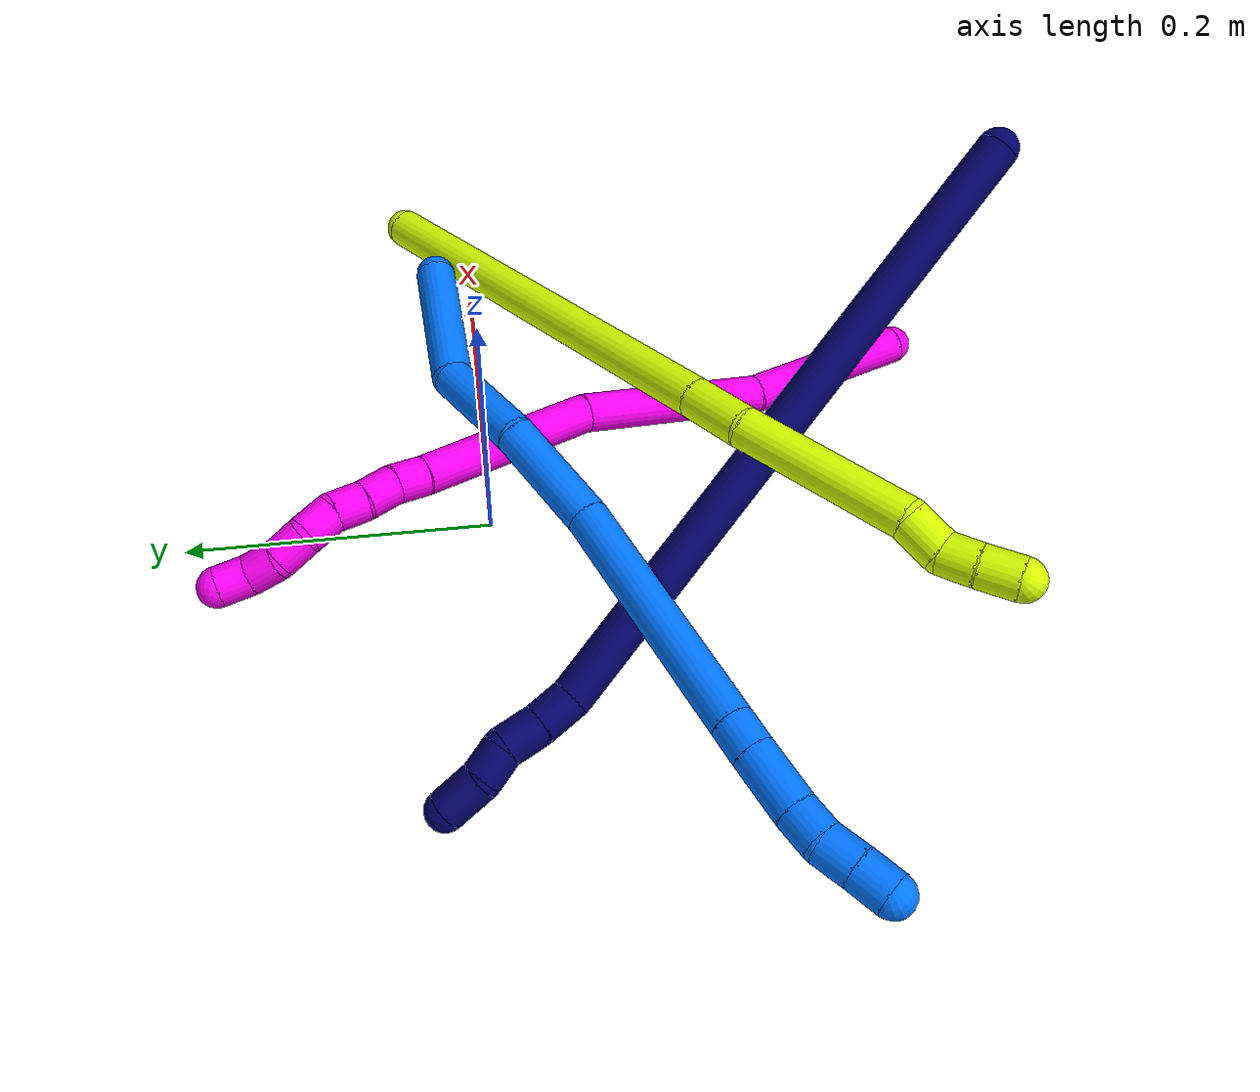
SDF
<sdf version="1.7">
 <world name="default">
  <model name="7">
   <static>0</static>
   <link name="7">
    <collision name="collision-cylinder-e_1_1_4">
     <pose>-0.00865 0.035133 -0.198859 -2.96672 -0.042811 0.479083</pose>
     <geometry><cylinder><radius>0.0125</radius><length>0.404247</length></cylinder></geometry>
     <surface>
      <friction><ode><mu>1.16</mu><mu2>1.16</mu2><slip1>0</slip1><slip2>0</slip2></ode></friction>
      <contact><ode><kp>1e+06</kp><kd>1</kd><max_vel>0</max_vel><min_depth>0.001</min_depth></ode></contact>
     </surface>
    </collision>
    <visual name="visual-cylinder-e_1_1_4">
     <pose>-0.00865 0.035133 -0.198859 -2.96672 -0.042811 0.479083</pose>
     <geometry><cylinder><radius>0.0125</radius><length>0.404247</length></cylinder></geometry>
     <material><ambient>0.003922 0 0.403922 1</ambient></material>
    </visual>
    <collision name="collision-cylinder-e_2_4_5">
     <pose>-0.021521 0.071237 -0.408885 -3.0549 -0.360051 2.67366</pose>
     <geometry><cylinder><radius>0.0125</radius><length>0.023957</length></cylinder></geometry>
     <surface>
      <friction><ode><mu>1.16</mu><mu2>1.16</mu2><slip1>0</slip1><slip2>0</slip2></ode></friction>
      <contact><ode><kp>1e+06</kp><kd>1</kd><max_vel>0</max_vel><min_depth>0.001</min_depth></ode></contact>
     </surface>
    </collision>
    <visual name="visual-cylinder-e_2_4_5">
     <pose>-0.021521 0.071237 -0.408885 -3.0549 -0.360051 2.67366</pose>
     <geometry><cylinder><radius>0.0125</radius><length>0.023957</length></cylinder></geometry>
     <material><ambient>0.003922 0 0.403922 1</ambient></material>
    </visual>
    <collision name="collision-cylinder-e_3_5_6">
     <pose>-0.031188 0.073552 -0.430688 -3.0158 -0.470165 2.62733</pose>
     <geometry><cylinder><radius>0.0125</radius><length>0.024046</length></cylinder></geometry>
     <surface>
      <friction><ode><mu>1.16</mu><mu2>1.16</mu2><slip1>0</slip1><slip2>0</slip2></ode></friction>
      <contact><ode><kp>1e+06</kp><kd>1</kd><max_vel>0</max_vel><min_depth>0.001</min_depth></ode></contact>
     </surface>
    </collision>
    <visual name="visual-cylinder-e_3_5_6">
     <pose>-0.031188 0.073552 -0.430688 -3.0158 -0.470165 2.62733</pose>
     <geometry><cylinder><radius>0.0125</radius><length>0.024046</length></cylinder></geometry>
     <material><ambient>0.003922 0 0.403922 1</ambient></material>
    </visual>
    <collision name="collision-cylinder-e_4_6_7">
     <pose>-0.037133 0.075743 -0.451703 -3.06024 -0.047716 1.06055</pose>
     <geometry><cylinder><radius>0.0125</radius><length>0.020856</length></cylinder></geometry>
     <surface>
      <friction><ode><mu>1.16</mu><mu2>1.16</mu2><slip1>0</slip1><slip2>0</slip2></ode></friction>
      <contact><ode><kp>1e+06</kp><kd>1</kd><max_vel>0</max_vel><min_depth>0.001</min_depth></ode></contact>
     </surface>
    </collision>
    <visual name="visual-cylinder-e_4_6_7">
     <pose>-0.037133 0.075743 -0.451703 -3.06024 -0.047716 1.06055</pose>
     <geometry><cylinder><radius>0.0125</radius><length>0.020856</length></cylinder></geometry>
     <material><ambient>0.003922 0 0.403922 1</ambient></material>
    </visual>
    <collision name="collision-cylinder-e_5_7_2">
     <pose>-0.039221 0.081755 -0.474398 -2.74439 -0.118615 0.573797</pose>
     <geometry><cylinder><radius>0.0125</radius><length>0.026894</length></cylinder></geometry>
     <surface>
      <friction><ode><mu>1.16</mu><mu2>1.16</mu2><slip1>0</slip1><slip2>0</slip2></ode></friction>
      <contact><ode><kp>1e+06</kp><kd>1</kd><max_vel>0</max_vel><min_depth>0.001</min_depth></ode></contact>
     </surface>
    </collision>
    <visual name="visual-cylinder-e_5_7_2">
     <pose>-0.039221 0.081755 -0.474398 -2.74439 -0.118615 0.573797</pose>
     <geometry><cylinder><radius>0.0125</radius><length>0.026894</length></cylinder></geometry>
     <material><ambient>0.003922 0 0.403922 1</ambient></material>
    </visual>
    <collision name="collision-sphere-2">
     <pose>-0.040813 0.08692 -0.486711 0 -0 0</pose>
     <geometry><sphere><radius>0.0125</radius></sphere></geometry>
     <surface>
      <friction><ode><mu>1.16</mu><mu2>1.16</mu2><slip1>0</slip1><slip2>0</slip2></ode></friction>
      <contact><ode><kp>1e+06</kp><kd>1</kd><max_vel>0</max_vel><min_depth>0.001</min_depth></ode></contact>
     </surface>
    </collision>
    <visual name="visual-sphere-2">
     <pose>-0.040813 0.08692 -0.486711 0 -0 0</pose>
     <geometry><sphere><radius>0.0125</radius></sphere></geometry>
     <material><ambient>0.003922 0 0.403922 1</ambient></material>
    </visual>
    <collision name="collision-sphere-7">
     <pose>-0.03763 0.07659 -0.462084 0 -0 0</pose>
     <geometry><sphere><radius>0.0125</radius></sphere></geometry>
     <surface>
      <friction><ode><mu>1.16</mu><mu2>1.16</mu2><slip1>0</slip1><slip2>0</slip2></ode></friction>
      <contact><ode><kp>1e+06</kp><kd>1</kd><max_vel>0</max_vel><min_depth>0.001</min_depth></ode></contact>
     </surface>
    </collision>
    <visual name="visual-sphere-7">
     <pose>-0.03763 0.07659 -0.462084 0 -0 0</pose>
     <geometry><sphere><radius>0.0125</radius></sphere></geometry>
     <material><ambient>0.003922 0 0.403922 1</ambient></material>
    </visual>
    <collision name="collision-sphere-6">
     <pose>-0.036635 0.074897 -0.441321 0 -0 0</pose>
     <geometry><sphere><radius>0.0125</radius></sphere></geometry>
     <surface>
      <friction><ode><mu>1.16</mu><mu2>1.16</mu2><slip1>0</slip1><slip2>0</slip2></ode></friction>
      <contact><ode><kp>1e+06</kp><kd>1</kd><max_vel>0</max_vel><min_depth>0.001</min_depth></ode></contact>
     </surface>
    </collision>
    <visual name="visual-sphere-6">
     <pose>-0.036635 0.074897 -0.441321 0 -0 0</pose>
     <geometry><sphere><radius>0.0125</radius></sphere></geometry>
     <material><ambient>0.003922 0 0.403922 1</ambient></material>
    </visual>
    <collision name="collision-sphere-5">
     <pose>-0.025742 0.072207 -0.420054 0 -0 0</pose>
     <geometry><sphere><radius>0.0125</radius></sphere></geometry>
     <surface>
      <friction><ode><mu>1.16</mu><mu2>1.16</mu2><slip1>0</slip1><slip2>0</slip2></ode></friction>
      <contact><ode><kp>1e+06</kp><kd>1</kd><max_vel>0</max_vel><min_depth>0.001</min_depth></ode></contact>
     </surface>
    </collision>
    <visual name="visual-sphere-5">
     <pose>-0.025742 0.072207 -0.420054 0 -0 0</pose>
     <geometry><sphere><radius>0.0125</radius></sphere></geometry>
     <material><ambient>0.003922 0 0.403922 1</ambient></material>
    </visual>
    <collision name="collision-sphere-1">
     <geometry><sphere><radius>0.0125</radius></sphere></geometry>
     <surface>
      <friction><ode><mu>1.16</mu><mu2>1.16</mu2><slip1>0</slip1><slip2>0</slip2></ode></friction>
      <contact><ode><kp>1e+06</kp><kd>1</kd><max_vel>0</max_vel><min_depth>0.001</min_depth></ode></contact>
     </surface>
    </collision>
    <visual name="visual-sphere-1">
     <geometry><sphere><radius>0.0125</radius></sphere></geometry>
     <material><ambient>0.003922 0 0.403922 1</ambient></material>
    </visual>
    <collision name="collision-sphere-4">
     <pose>-0.017301 0.070266 -0.397717 0 -0 0</pose>
     <geometry><sphere><radius>0.0125</radius></sphere></geometry>
     <surface>
      <friction><ode><mu>1.16</mu><mu2>1.16</mu2><slip1>0</slip1><slip2>0</slip2></ode></friction>
      <contact><ode><kp>1e+06</kp><kd>1</kd><max_vel>0</max_vel><min_depth>0.001</min_depth></ode></contact>
     </surface>
    </collision>
    <visual name="visual-sphere-4">
     <pose>-0.017301 0.070266 -0.397717 0 -0 0</pose>
     <geometry><sphere><radius>0.0125</radius></sphere></geometry>
     <material><ambient>0.003922 0 0.403922 1</ambient></material>
    </visual>
    <inertial>
     <pose>-0.013183 0.042912 -0.245438 0 -0 0</pose>
     <mass>0.5</mass>
     <inertia>
      <ixx>0.007438</ixx>
      <ixy>0</ixy>
      <ixz>0</ixz>
      <iyy>-0.002251</iyy>
      <iyz>0</iyz>
      <izz>-0.000761</izz>
     </inertia>
    </inertial>
   </link>
   <pose>0.087237 -0.312136 0.221485 -1.08804 0.781294 -1.88874</pose>
  </model>
  <model name="10">
   <static>0</static>
   <link name="10">
    <collision name="collision-cylinder-e_1_1_4">
     <pose>-0.006989 0.04264 -0.036196 -2.27463 -0.124318 0.26734</pose>
     <geometry><cylinder><radius>0.0125</radius><length>0.112732</length></cylinder></geometry>
     <surface>
      <friction><ode><mu>1.16</mu><mu2>1.16</mu2><slip1>0</slip1><slip2>0</slip2></ode></friction>
      <contact><ode><kp>1e+06</kp><kd>1</kd><max_vel>0</max_vel><min_depth>0.001</min_depth></ode></contact>
     </surface>
    </collision>
    <visual name="visual-cylinder-e_1_1_4">
     <pose>-0.006989 0.04264 -0.036196 -2.27463 -0.124318 0.26734</pose>
     <geometry><cylinder><radius>0.0125</radius><length>0.112732</length></cylinder></geometry>
     <material><ambient>1 0 0.964706 1</ambient></material>
    </visual>
    <collision name="collision-cylinder-e_2_4_5">
     <pose>-0.029721 0.137284 -0.103005 -2.10284 -0.255187 0.441467</pose>
     <geometry><cylinder><radius>0.0125</radius><length>0.124732</length></cylinder></geometry>
     <surface>
      <friction><ode><mu>1.16</mu><mu2>1.16</mu2><slip1>0</slip1><slip2>0</slip2></ode></friction>
      <contact><ode><kp>1e+06</kp><kd>1</kd><max_vel>0</max_vel><min_depth>0.001</min_depth></ode></contact>
     </surface>
    </collision>
    <visual name="visual-cylinder-e_2_4_5">
     <pose>-0.029721 0.137284 -0.103005 -2.10284 -0.255187 0.441467</pose>
     <geometry><cylinder><radius>0.0125</radius><length>0.124732</length></cylinder></geometry>
     <material><ambient>1 0 0.964706 1</ambient></material>
    </visual>
    <collision name="collision-cylinder-e_3_5_6">
     <pose>-0.058094 0.229533 -0.175205 -2.3726 -0.214882 0.520987</pose>
     <geometry><cylinder><radius>0.0125</radius><length>0.118465</length></cylinder></geometry>
     <surface>
      <friction><ode><mu>1.16</mu><mu2>1.16</mu2><slip1>0</slip1><slip2>0</slip2></ode></friction>
      <contact><ode><kp>1e+06</kp><kd>1</kd><max_vel>0</max_vel><min_depth>0.001</min_depth></ode></contact>
     </surface>
    </collision>
    <visual name="visual-cylinder-e_3_5_6">
     <pose>-0.058094 0.229533 -0.175205 -2.3726 -0.214882 0.520987</pose>
     <geometry><cylinder><radius>0.0125</radius><length>0.118465</length></cylinder></geometry>
     <material><ambient>1 0 0.964706 1</ambient></material>
    </visual>
    <collision name="collision-cylinder-e_4_6_7">
     <pose>-0.072908 0.277341 -0.223175 -2.27183 -0.21708 0.46081</pose>
     <geometry><cylinder><radius>0.0125</radius><length>0.020273</length></cylinder></geometry>
     <surface>
      <friction><ode><mu>1.16</mu><mu2>1.16</mu2><slip1>0</slip1><slip2>0</slip2></ode></friction>
      <contact><ode><kp>1e+06</kp><kd>1</kd><max_vel>0</max_vel><min_depth>0.001</min_depth></ode></contact>
     </surface>
    </collision>
    <visual name="visual-cylinder-e_4_6_7">
     <pose>-0.072908 0.277341 -0.223175 -2.27183 -0.21708 0.46081</pose>
     <geometry><cylinder><radius>0.0125</radius><length>0.020273</length></cylinder></geometry>
     <material><ambient>1 0 0.964706 1</ambient></material>
    </visual>
    <collision name="collision-cylinder-e_5_7_8">
     <pose>-0.0769 0.291462 -0.23808 -2.48564 -0.166699 0.48152</pose>
     <geometry><cylinder><radius>0.0125</radius><length>0.021804</length></cylinder></geometry>
     <surface>
      <friction><ode><mu>1.16</mu><mu2>1.16</mu2><slip1>0</slip1><slip2>0</slip2></ode></friction>
      <contact><ode><kp>1e+06</kp><kd>1</kd><max_vel>0</max_vel><min_depth>0.001</min_depth></ode></contact>
     </surface>
    </collision>
    <visual name="visual-cylinder-e_5_7_8">
     <pose>-0.0769 0.291462 -0.23808 -2.48564 -0.166699 0.48152</pose>
     <geometry><cylinder><radius>0.0125</radius><length>0.021804</length></cylinder></geometry>
     <material><ambient>1 0 0.964706 1</ambient></material>
    </visual>
    <collision name="collision-cylinder-e_6_8_9">
     <pose>-0.080297 0.305448 -0.253465 -2.31676 -0.155696 0.352885</pose>
     <geometry><cylinder><radius>0.0125</radius><length>0.020479</length></cylinder></geometry>
     <surface>
      <friction><ode><mu>1.16</mu><mu2>1.16</mu2><slip1>0</slip1><slip2>0</slip2></ode></friction>
      <contact><ode><kp>1e+06</kp><kd>1</kd><max_vel>0</max_vel><min_depth>0.001</min_depth></ode></contact>
     </surface>
    </collision>
    <visual name="visual-cylinder-e_6_8_9">
     <pose>-0.080297 0.305448 -0.253465 -2.31676 -0.155696 0.352885</pose>
     <geometry><cylinder><radius>0.0125</radius><length>0.020479</length></cylinder></geometry>
     <material><ambient>1 0 0.964706 1</ambient></material>
    </visual>
    <collision name="collision-cylinder-e_7_9_10">
     <pose>-0.081608 0.318361 -0.269339 -2.59485 0.026172 -0.093277</pose>
     <geometry><cylinder><radius>0.0125</radius><length>0.0211</length></cylinder></geometry>
     <surface>
      <friction><ode><mu>1.16</mu><mu2>1.16</mu2><slip1>0</slip1><slip2>0</slip2></ode></friction>
      <contact><ode><kp>1e+06</kp><kd>1</kd><max_vel>0</max_vel><min_depth>0.001</min_depth></ode></contact>
     </surface>
    </collision>
    <visual name="visual-cylinder-e_7_9_10">
     <pose>-0.081608 0.318361 -0.269339 -2.59485 0.026172 -0.093277</pose>
     <geometry><cylinder><radius>0.0125</radius><length>0.0211</length></cylinder></geometry>
     <material><ambient>1 0 0.964706 1</ambient></material>
    </visual>
    <collision name="collision-cylinder-e_8_10_11">
     <pose>-0.07793 0.329938 -0.285629 -2.44475 0.344099 -0.892411</pose>
     <geometry><cylinder><radius>0.0125</radius><length>0.020173</length></cylinder></geometry>
     <surface>
      <friction><ode><mu>1.16</mu><mu2>1.16</mu2><slip1>0</slip1><slip2>0</slip2></ode></friction>
      <contact><ode><kp>1e+06</kp><kd>1</kd><max_vel>0</max_vel><min_depth>0.001</min_depth></ode></contact>
     </surface>
    </collision>
    <visual name="visual-cylinder-e_8_10_11">
     <pose>-0.07793 0.329938 -0.285629 -2.44475 0.344099 -0.892411</pose>
     <geometry><cylinder><radius>0.0125</radius><length>0.020173</length></cylinder></geometry>
     <material><ambient>1 0 0.964706 1</ambient></material>
    </visual>
    <collision name="collision-cylinder-e_9_11_12">
     <pose>-0.070413 0.343991 -0.297614 -2.10446 0.418737 -0.712883</pose>
     <geometry><cylinder><radius>0.0125</radius><length>0.020237</length></cylinder></geometry>
     <surface>
      <friction><ode><mu>1.16</mu><mu2>1.16</mu2><slip1>0</slip1><slip2>0</slip2></ode></friction>
      <contact><ode><kp>1e+06</kp><kd>1</kd><max_vel>0</max_vel><min_depth>0.001</min_depth></ode></contact>
     </surface>
    </collision>
    <visual name="visual-cylinder-e_9_11_12">
     <pose>-0.070413 0.343991 -0.297614 -2.10446 0.418737 -0.712883</pose>
     <geometry><cylinder><radius>0.0125</radius><length>0.020237</length></cylinder></geometry>
     <material><ambient>1 0 0.964706 1</ambient></material>
    </visual>
    <collision name="collision-cylinder-e_10_12_2">
     <pose>-0.06588 0.360136 -0.308048 -2.18166 0.041837 -0.080335</pose>
     <geometry><cylinder><radius>0.0125</radius><length>0.020005</length></cylinder></geometry>
     <surface>
      <friction><ode><mu>1.16</mu><mu2>1.16</mu2><slip1>0</slip1><slip2>0</slip2></ode></friction>
      <contact><ode><kp>1e+06</kp><kd>1</kd><max_vel>0</max_vel><min_depth>0.001</min_depth></ode></contact>
     </surface>
    </collision>
    <visual name="visual-cylinder-e_10_12_2">
     <pose>-0.06588 0.360136 -0.308048 -2.18166 0.041837 -0.080335</pose>
     <geometry><cylinder><radius>0.0125</radius><length>0.020005</length></cylinder></geometry>
     <material><ambient>1 0 0.964706 1</ambient></material>
    </visual>
    <collision name="collision-sphere-2">
     <pose>-0.065462 0.368323 -0.31378 0 -0 0</pose>
     <geometry><sphere><radius>0.0125</radius></sphere></geometry>
     <surface>
      <friction><ode><mu>1.16</mu><mu2>1.16</mu2><slip1>0</slip1><slip2>0</slip2></ode></friction>
      <contact><ode><kp>1e+06</kp><kd>1</kd><max_vel>0</max_vel><min_depth>0.001</min_depth></ode></contact>
     </surface>
    </collision>
    <visual name="visual-sphere-2">
     <pose>-0.065462 0.368323 -0.31378 0 -0 0</pose>
     <geometry><sphere><radius>0.0125</radius></sphere></geometry>
     <material><ambient>1 0 0.964706 1</ambient></material>
    </visual>
    <collision name="collision-sphere-12">
     <pose>-0.066298 0.35195 -0.302316 0 -0 0</pose>
     <geometry><sphere><radius>0.0125</radius></sphere></geometry>
     <surface>
      <friction><ode><mu>1.16</mu><mu2>1.16</mu2><slip1>0</slip1><slip2>0</slip2></ode></friction>
      <contact><ode><kp>1e+06</kp><kd>1</kd><max_vel>0</max_vel><min_depth>0.001</min_depth></ode></contact>
     </surface>
    </collision>
    <visual name="visual-sphere-12">
     <pose>-0.066298 0.35195 -0.302316 0 -0 0</pose>
     <geometry><sphere><radius>0.0125</radius></sphere></geometry>
     <material><ambient>1 0 0.964706 1</ambient></material>
    </visual>
    <collision name="collision-sphere-11">
     <pose>-0.074527 0.336032 -0.292911 0 -0 0</pose>
     <geometry><sphere><radius>0.0125</radius></sphere></geometry>
     <surface>
      <friction><ode><mu>1.16</mu><mu2>1.16</mu2><slip1>0</slip1><slip2>0</slip2></ode></friction>
      <contact><ode><kp>1e+06</kp><kd>1</kd><max_vel>0</max_vel><min_depth>0.001</min_depth></ode></contact>
     </surface>
    </collision>
    <visual name="visual-sphere-11">
     <pose>-0.074527 0.336032 -0.292911 0 -0 0</pose>
     <geometry><sphere><radius>0.0125</radius></sphere></geometry>
     <material><ambient>1 0 0.964706 1</ambient></material>
    </visual>
    <collision name="collision-sphere-10">
     <pose>-0.081332 0.323844 -0.278348 0 -0 0</pose>
     <geometry><sphere><radius>0.0125</radius></sphere></geometry>
     <surface>
      <friction><ode><mu>1.16</mu><mu2>1.16</mu2><slip1>0</slip1><slip2>0</slip2></ode></friction>
      <contact><ode><kp>1e+06</kp><kd>1</kd><max_vel>0</max_vel><min_depth>0.001</min_depth></ode></contact>
     </surface>
    </collision>
    <visual name="visual-sphere-10">
     <pose>-0.081332 0.323844 -0.278348 0 -0 0</pose>
     <geometry><sphere><radius>0.0125</radius></sphere></geometry>
     <material><ambient>1 0 0.964706 1</ambient></material>
    </visual>
    <collision name="collision-sphere-9">
     <pose>-0.081884 0.312878 -0.26033 0 -0 0</pose>
     <geometry><sphere><radius>0.0125</radius></sphere></geometry>
     <surface>
      <friction><ode><mu>1.16</mu><mu2>1.16</mu2><slip1>0</slip1><slip2>0</slip2></ode></friction>
      <contact><ode><kp>1e+06</kp><kd>1</kd><max_vel>0</max_vel><min_depth>0.001</min_depth></ode></contact>
     </surface>
    </collision>
    <visual name="visual-sphere-9">
     <pose>-0.081884 0.312878 -0.26033 0 -0 0</pose>
     <geometry><sphere><radius>0.0125</radius></sphere></geometry>
     <material><ambient>1 0 0.964706 1</ambient></material>
    </visual>
    <collision name="collision-sphere-4">
     <pose>-0.013979 0.08528 -0.072391 0 -0 0</pose>
     <geometry><sphere><radius>0.0125</radius></sphere></geometry>
     <surface>
      <friction><ode><mu>1.16</mu><mu2>1.16</mu2><slip1>0</slip1><slip2>0</slip2></ode></friction>
      <contact><ode><kp>1e+06</kp><kd>1</kd><max_vel>0</max_vel><min_depth>0.001</min_depth></ode></contact>
     </surface>
    </collision>
    <visual name="visual-sphere-4">
     <pose>-0.013979 0.08528 -0.072391 0 -0 0</pose>
     <geometry><sphere><radius>0.0125</radius></sphere></geometry>
     <material><ambient>1 0 0.964706 1</ambient></material>
    </visual>
    <collision name="collision-sphere-1">
     <geometry><sphere><radius>0.0125</radius></sphere></geometry>
     <surface>
      <friction><ode><mu>1.16</mu><mu2>1.16</mu2><slip1>0</slip1><slip2>0</slip2></ode></friction>
      <contact><ode><kp>1e+06</kp><kd>1</kd><max_vel>0</max_vel><min_depth>0.001</min_depth></ode></contact>
     </surface>
    </collision>
    <visual name="visual-sphere-1">
     <geometry><sphere><radius>0.0125</radius></sphere></geometry>
     <material><ambient>1 0 0.964706 1</ambient></material>
    </visual>
    <collision name="collision-sphere-8">
     <pose>-0.078709 0.298019 -0.246599 0 -0 0</pose>
     <geometry><sphere><radius>0.0125</radius></sphere></geometry>
     <surface>
      <friction><ode><mu>1.16</mu><mu2>1.16</mu2><slip1>0</slip1><slip2>0</slip2></ode></friction>
      <contact><ode><kp>1e+06</kp><kd>1</kd><max_vel>0</max_vel><min_depth>0.001</min_depth></ode></contact>
     </surface>
    </collision>
    <visual name="visual-sphere-8">
     <pose>-0.078709 0.298019 -0.246599 0 -0 0</pose>
     <geometry><sphere><radius>0.0125</radius></sphere></geometry>
     <material><ambient>1 0 0.964706 1</ambient></material>
    </visual>
    <collision name="collision-sphere-5">
     <pose>-0.045464 0.189289 -0.133618 0 -0 0</pose>
     <geometry><sphere><radius>0.0125</radius></sphere></geometry>
     <surface>
      <friction><ode><mu>1.16</mu><mu2>1.16</mu2><slip1>0</slip1><slip2>0</slip2></ode></friction>
      <contact><ode><kp>1e+06</kp><kd>1</kd><max_vel>0</max_vel><min_depth>0.001</min_depth></ode></contact>
     </surface>
    </collision>
    <visual name="visual-sphere-5">
     <pose>-0.045464 0.189289 -0.133618 0 -0 0</pose>
     <geometry><sphere><radius>0.0125</radius></sphere></geometry>
     <material><ambient>1 0 0.964706 1</ambient></material>
    </visual>
    <collision name="collision-sphere-6">
     <pose>-0.070725 0.269776 -0.216791 0 -0 0</pose>
     <geometry><sphere><radius>0.0125</radius></sphere></geometry>
     <surface>
      <friction><ode><mu>1.16</mu><mu2>1.16</mu2><slip1>0</slip1><slip2>0</slip2></ode></friction>
      <contact><ode><kp>1e+06</kp><kd>1</kd><max_vel>0</max_vel><min_depth>0.001</min_depth></ode></contact>
     </surface>
    </collision>
    <visual name="visual-sphere-6">
     <pose>-0.070725 0.269776 -0.216791 0 -0 0</pose>
     <geometry><sphere><radius>0.0125</radius></sphere></geometry>
     <material><ambient>1 0 0.964706 1</ambient></material>
    </visual>
    <collision name="collision-sphere-7">
     <pose>-0.075091 0.284905 -0.22956 0 -0 0</pose>
     <geometry><sphere><radius>0.0125</radius></sphere></geometry>
     <surface>
      <friction><ode><mu>1.16</mu><mu2>1.16</mu2><slip1>0</slip1><slip2>0</slip2></ode></friction>
      <contact><ode><kp>1e+06</kp><kd>1</kd><max_vel>0</max_vel><min_depth>0.001</min_depth></ode></contact>
     </surface>
    </collision>
    <visual name="visual-sphere-7">
     <pose>-0.075091 0.284905 -0.22956 0 -0 0</pose>
     <geometry><sphere><radius>0.0125</radius></sphere></geometry>
     <material><ambient>1 0 0.964706 1</ambient></material>
    </visual>
    <inertial>
     <pose>-0.044427 0.189788 -0.152441 0 -0 0</pose>
     <mass>0.5</mass>
     <inertia><ixx>0.00056</ixx><ixy>0</ixy><ixz>0</ixz><iyy>-2e-05</iyy><iyz>0</iyz><izz>-0.000274</izz></inertia>
    </inertial>
   </link>
   <pose>0.106021 -0.288488 0.023379 -0.504681 1.53517 -0.835259</pose>
  </model>
  <model name="14">
   <static>0</static>
   <link name="14">
    <collision name="collision-cylinder-e_1_1_4">
     <pose>-0.00615 -0.043975 0.013128 1.28068 -0.133207 -0.099314</pose>
     <geometry><cylinder><radius>0.0125</radius><length>0.092606</length></cylinder></geometry>
     <surface>
      <friction><ode><mu>1.16</mu><mu2>1.16</mu2><slip1>0</slip1><slip2>0</slip2></ode></friction>
      <contact><ode><kp>1e+06</kp><kd>1</kd><max_vel>0</max_vel><min_depth>0.001</min_depth></ode></contact>
     </surface>
    </collision>
    <visual name="visual-cylinder-e_1_1_4">
     <pose>-0.00615 -0.043975 0.013128 1.28068 -0.133207 -0.099314</pose>
     <geometry><cylinder><radius>0.0125</radius><length>0.092606</length></cylinder></geometry>
     <material><ambient>0 0.462745 1 1</ambient></material>
    </visual>
    <collision name="collision-cylinder-e_2_4_5">
     <pose>-0.031898 -0.113037 0.036985 1.16668 -0.622915 -0.418696</pose>
     <geometry><cylinder><radius>0.0125</radius><length>0.067188</length></cylinder></geometry>
     <surface>
      <friction><ode><mu>1.16</mu><mu2>1.16</mu2><slip1>0</slip1><slip2>0</slip2></ode></friction>
      <contact><ode><kp>1e+06</kp><kd>1</kd><max_vel>0</max_vel><min_depth>0.001</min_depth></ode></contact>
     </surface>
    </collision>
    <visual name="visual-cylinder-e_2_4_5">
     <pose>-0.031898 -0.113037 0.036985 1.16668 -0.622915 -0.418696</pose>
     <geometry><cylinder><radius>0.0125</radius><length>0.067188</length></cylinder></geometry>
     <material><ambient>0 0.462745 1 1</ambient></material>
    </visual>
    <collision name="collision-cylinder-e_3_5_6">
     <pose>-0.069124 -0.163476 0.065462 0.960015 -0.517738 -0.274004</pose>
     <geometry><cylinder><radius>0.0125</radius><length>0.071232</length></cylinder></geometry>
     <surface>
      <friction><ode><mu>1.16</mu><mu2>1.16</mu2><slip1>0</slip1><slip2>0</slip2></ode></friction>
      <contact><ode><kp>1e+06</kp><kd>1</kd><max_vel>0</max_vel><min_depth>0.001</min_depth></ode></contact>
     </surface>
    </collision>
    <visual name="visual-cylinder-e_3_5_6">
     <pose>-0.069124 -0.163476 0.065462 0.960015 -0.517738 -0.274004</pose>
     <geometry><cylinder><radius>0.0125</radius><length>0.071232</length></cylinder></geometry>
     <material><ambient>0 0.462745 1 1</ambient></material>
    </visual>
    <collision name="collision-cylinder-e_4_6_7">
     <pose>-0.118648 -0.249435 0.114249 1.0975 -0.438092 -0.270548</pose>
     <geometry><cylinder><radius>0.0125</radius><length>0.150386</length></cylinder></geometry>
     <surface>
      <friction><ode><mu>1.16</mu><mu2>1.16</mu2><slip1>0</slip1><slip2>0</slip2></ode></friction>
      <contact><ode><kp>1e+06</kp><kd>1</kd><max_vel>0</max_vel><min_depth>0.001</min_depth></ode></contact>
     </surface>
    </collision>
    <visual name="visual-cylinder-e_4_6_7">
     <pose>-0.118648 -0.249435 0.114249 1.0975 -0.438092 -0.270548</pose>
     <geometry><cylinder><radius>0.0125</radius><length>0.150386</length></cylinder></geometry>
     <material><ambient>0 0.462745 1 1</ambient></material>
    </visual>
    <collision name="collision-cylinder-e_5_7_8">
     <pose>-0.154783 -0.318023 0.149646 1.07093 -0.435952 -0.261321</pose>
     <geometry><cylinder><radius>0.0125</radius><length>0.020065</length></cylinder></geometry>
     <surface>
      <friction><ode><mu>1.16</mu><mu2>1.16</mu2><slip1>0</slip1><slip2>0</slip2></ode></friction>
      <contact><ode><kp>1e+06</kp><kd>1</kd><max_vel>0</max_vel><min_depth>0.001</min_depth></ode></contact>
     </surface>
    </collision>
    <visual name="visual-cylinder-e_5_7_8">
     <pose>-0.154783 -0.318023 0.149646 1.07093 -0.435952 -0.261321</pose>
     <geometry><cylinder><radius>0.0125</radius><length>0.020065</length></cylinder></geometry>
     <material><ambient>0 0.462745 1 1</ambient></material>
    </visual>
    <collision name="collision-cylinder-e_6_8_9">
     <pose>-0.16712 -0.340487 0.162185 1.05668 -0.453207 -0.267547</pose>
     <geometry><cylinder><radius>0.0125</radius><length>0.037003</length></cylinder></geometry>
     <surface>
      <friction><ode><mu>1.16</mu><mu2>1.16</mu2><slip1>0</slip1><slip2>0</slip2></ode></friction>
      <contact><ode><kp>1e+06</kp><kd>1</kd><max_vel>0</max_vel><min_depth>0.001</min_depth></ode></contact>
     </surface>
    </collision>
    <visual name="visual-cylinder-e_6_8_9">
     <pose>-0.16712 -0.340487 0.162185 1.05668 -0.453207 -0.267547</pose>
     <geometry><cylinder><radius>0.0125</radius><length>0.037003</length></cylinder></geometry>
     <material><ambient>0 0.462745 1 1</ambient></material>
    </visual>
    <collision name="collision-cylinder-e_7_9_10">
     <pose>-0.180383 -0.362653 0.174449 1.08211 -0.5355 -0.32674</pose>
     <geometry><cylinder><radius>0.0125</radius><length>0.020233</length></cylinder></geometry>
     <surface>
      <friction><ode><mu>1.16</mu><mu2>1.16</mu2><slip1>0</slip1><slip2>0</slip2></ode></friction>
      <contact><ode><kp>1e+06</kp><kd>1</kd><max_vel>0</max_vel><min_depth>0.001</min_depth></ode></contact>
     </surface>
    </collision>
    <visual name="visual-cylinder-e_7_9_10">
     <pose>-0.180383 -0.362653 0.174449 1.08211 -0.5355 -0.32674</pose>
     <geometry><cylinder><radius>0.0125</radius><length>0.020233</length></cylinder></geometry>
     <material><ambient>0 0.462745 1 1</ambient></material>
    </visual>
    <collision name="collision-cylinder-e_8_10_11">
     <pose>-0.192613 -0.376285 0.183194 0.906402 -0.751909 -0.37984</pose>
     <geometry><cylinder><radius>0.0125</radius><length>0.020694</length></cylinder></geometry>
     <surface>
      <friction><ode><mu>1.16</mu><mu2>1.16</mu2><slip1>0</slip1><slip2>0</slip2></ode></friction>
      <contact><ode><kp>1e+06</kp><kd>1</kd><max_vel>0</max_vel><min_depth>0.001</min_depth></ode></contact>
     </surface>
    </collision>
    <visual name="visual-cylinder-e_8_10_11">
     <pose>-0.192613 -0.376285 0.183194 0.906402 -0.751909 -0.37984</pose>
     <geometry><cylinder><radius>0.0125</radius><length>0.020694</length></cylinder></geometry>
     <material><ambient>0 0.462745 1 1</ambient></material>
    </visual>
    <collision name="collision-cylinder-e_9_11_2">
     <pose>-0.206418 -0.388264 0.19278 0.885664 -0.713381 -0.349823</pose>
     <geometry><cylinder><radius>0.0125</radius><length>0.020594</length></cylinder></geometry>
     <surface>
      <friction><ode><mu>1.16</mu><mu2>1.16</mu2><slip1>0</slip1><slip2>0</slip2></ode></friction>
      <contact><ode><kp>1e+06</kp><kd>1</kd><max_vel>0</max_vel><min_depth>0.001</min_depth></ode></contact>
     </surface>
    </collision>
    <visual name="visual-cylinder-e_9_11_2">
     <pose>-0.206418 -0.388264 0.19278 0.885664 -0.713381 -0.349823</pose>
     <geometry><cylinder><radius>0.0125</radius><length>0.020594</length></cylinder></geometry>
     <material><ambient>0 0.462745 1 1</ambient></material>
    </visual>
    <collision name="collision-sphere-2">
     <pose>-0.213156 -0.394293 0.197707 0 -0 0</pose>
     <geometry><sphere><radius>0.0125</radius></sphere></geometry>
     <surface>
      <friction><ode><mu>1.16</mu><mu2>1.16</mu2><slip1>0</slip1><slip2>0</slip2></ode></friction>
      <contact><ode><kp>1e+06</kp><kd>1</kd><max_vel>0</max_vel><min_depth>0.001</min_depth></ode></contact>
     </surface>
    </collision>
    <visual name="visual-sphere-2">
     <pose>-0.213156 -0.394293 0.197707 0 -0 0</pose>
     <geometry><sphere><radius>0.0125</radius></sphere></geometry>
     <material><ambient>0 0.462745 1 1</ambient></material>
    </visual>
    <collision name="collision-sphere-11">
     <pose>-0.19968 -0.382235 0.187853 0 -0 0</pose>
     <geometry><sphere><radius>0.0125</radius></sphere></geometry>
     <surface>
      <friction><ode><mu>1.16</mu><mu2>1.16</mu2><slip1>0</slip1><slip2>0</slip2></ode></friction>
      <contact><ode><kp>1e+06</kp><kd>1</kd><max_vel>0</max_vel><min_depth>0.001</min_depth></ode></contact>
     </surface>
    </collision>
    <visual name="visual-sphere-11">
     <pose>-0.19968 -0.382235 0.187853 0 -0 0</pose>
     <geometry><sphere><radius>0.0125</radius></sphere></geometry>
     <material><ambient>0 0.462745 1 1</ambient></material>
    </visual>
    <collision name="collision-sphere-10">
     <pose>-0.185545 -0.370335 0.178534 0 -0 0</pose>
     <geometry><sphere><radius>0.0125</radius></sphere></geometry>
     <surface>
      <friction><ode><mu>1.16</mu><mu2>1.16</mu2><slip1>0</slip1><slip2>0</slip2></ode></friction>
      <contact><ode><kp>1e+06</kp><kd>1</kd><max_vel>0</max_vel><min_depth>0.001</min_depth></ode></contact>
     </surface>
    </collision>
    <visual name="visual-sphere-10">
     <pose>-0.185545 -0.370335 0.178534 0 -0 0</pose>
     <geometry><sphere><radius>0.0125</radius></sphere></geometry>
     <material><ambient>0 0.462745 1 1</ambient></material>
    </visual>
    <collision name="collision-sphere-9">
     <pose>-0.175221 -0.354971 0.170365 0 -0 0</pose>
     <geometry><sphere><radius>0.0125</radius></sphere></geometry>
     <surface>
      <friction><ode><mu>1.16</mu><mu2>1.16</mu2><slip1>0</slip1><slip2>0</slip2></ode></friction>
      <contact><ode><kp>1e+06</kp><kd>1</kd><max_vel>0</max_vel><min_depth>0.001</min_depth></ode></contact>
     </surface>
    </collision>
    <visual name="visual-sphere-9">
     <pose>-0.175221 -0.354971 0.170365 0 -0 0</pose>
     <geometry><sphere><radius>0.0125</radius></sphere></geometry>
     <material><ambient>0 0.462745 1 1</ambient></material>
    </visual>
    <collision name="collision-sphere-4">
     <pose>-0.012299 -0.08795 0.026256 0 -0 0</pose>
     <geometry><sphere><radius>0.0125</radius></sphere></geometry>
     <surface>
      <friction><ode><mu>1.16</mu><mu2>1.16</mu2><slip1>0</slip1><slip2>0</slip2></ode></friction>
      <contact><ode><kp>1e+06</kp><kd>1</kd><max_vel>0</max_vel><min_depth>0.001</min_depth></ode></contact>
     </surface>
    </collision>
    <visual name="visual-sphere-4">
     <pose>-0.012299 -0.08795 0.026256 0 -0 0</pose>
     <geometry><sphere><radius>0.0125</radius></sphere></geometry>
     <material><ambient>0 0.462745 1 1</ambient></material>
    </visual>
    <collision name="collision-sphere-1">
     <geometry><sphere><radius>0.0125</radius></sphere></geometry>
     <surface>
      <friction><ode><mu>1.16</mu><mu2>1.16</mu2><slip1>0</slip1><slip2>0</slip2></ode></friction>
      <contact><ode><kp>1e+06</kp><kd>1</kd><max_vel>0</max_vel><min_depth>0.001</min_depth></ode></contact>
     </surface>
    </collision>
    <visual name="visual-sphere-1">
     <geometry><sphere><radius>0.0125</radius></sphere></geometry>
     <material><ambient>0 0.462745 1 1</ambient></material>
    </visual>
    <collision name="collision-sphere-8">
     <pose>-0.159019 -0.326004 0.154005 0 -0 0</pose>
     <geometry><sphere><radius>0.0125</radius></sphere></geometry>
     <surface>
      <friction><ode><mu>1.16</mu><mu2>1.16</mu2><slip1>0</slip1><slip2>0</slip2></ode></friction>
      <contact><ode><kp>1e+06</kp><kd>1</kd><max_vel>0</max_vel><min_depth>0.001</min_depth></ode></contact>
     </surface>
    </collision>
    <visual name="visual-sphere-8">
     <pose>-0.159019 -0.326004 0.154005 0 -0 0</pose>
     <geometry><sphere><radius>0.0125</radius></sphere></geometry>
     <material><ambient>0 0.462745 1 1</ambient></material>
    </visual>
    <collision name="collision-sphere-5">
     <pose>-0.051497 -0.138123 0.047713 0 -0 0</pose>
     <geometry><sphere><radius>0.0125</radius></sphere></geometry>
     <surface>
      <friction><ode><mu>1.16</mu><mu2>1.16</mu2><slip1>0</slip1><slip2>0</slip2></ode></friction>
      <contact><ode><kp>1e+06</kp><kd>1</kd><max_vel>0</max_vel><min_depth>0.001</min_depth></ode></contact>
     </surface>
    </collision>
    <visual name="visual-sphere-5">
     <pose>-0.051497 -0.138123 0.047713 0 -0 0</pose>
     <geometry><sphere><radius>0.0125</radius></sphere></geometry>
     <material><ambient>0 0.462745 1 1</ambient></material>
    </visual>
    <collision name="collision-sphere-6">
     <pose>-0.086751 -0.188828 0.083211 0 -0 0</pose>
     <geometry><sphere><radius>0.0125</radius></sphere></geometry>
     <surface>
      <friction><ode><mu>1.16</mu><mu2>1.16</mu2><slip1>0</slip1><slip2>0</slip2></ode></friction>
      <contact><ode><kp>1e+06</kp><kd>1</kd><max_vel>0</max_vel><min_depth>0.001</min_depth></ode></contact>
     </surface>
    </collision>
    <visual name="visual-sphere-6">
     <pose>-0.086751 -0.188828 0.083211 0 -0 0</pose>
     <geometry><sphere><radius>0.0125</radius></sphere></geometry>
     <material><ambient>0 0.462745 1 1</ambient></material>
    </visual>
    <collision name="collision-sphere-7">
     <pose>-0.150546 -0.310041 0.145287 0 -0 0</pose>
     <geometry><sphere><radius>0.0125</radius></sphere></geometry>
     <surface>
      <friction><ode><mu>1.16</mu><mu2>1.16</mu2><slip1>0</slip1><slip2>0</slip2></ode></friction>
      <contact><ode><kp>1e+06</kp><kd>1</kd><max_vel>0</max_vel><min_depth>0.001</min_depth></ode></contact>
     </surface>
    </collision>
    <visual name="visual-sphere-7">
     <pose>-0.150546 -0.310041 0.145287 0 -0 0</pose>
     <geometry><sphere><radius>0.0125</radius></sphere></geometry>
     <material><ambient>0 0.462745 1 1</ambient></material>
    </visual>
    <inertial>
     <pose>-0.093311 -0.205847 0.09168 0 -0 0</pose>
     <mass>0.5</mass>
     <inertia>
      <ixx>0.000266</ixx>
      <ixy>0</ixy>
      <ixz>0</ixz>
      <iyy>9.5e-05</iyy>
      <iyz>0</iyz>
      <izz>0.000538</izz>
     </inertia>
    </inertial>
   </link>
   <pose>0.140073 0.02264 0.093483 -2.8426 0.426595 1.5139</pose>
  </model>
  <model name="15">
   <static>0</static>
   <link name="15">
    <collision name="collision-cylinder-e_1_1_4">
     <pose>-0.133585 0.051289 0.001523 -1.54111 -1.20406 1.17649</pose>
     <geometry><cylinder><radius>0.0125</radius><length>0.286202</length></cylinder></geometry>
     <surface>
      <friction><ode><mu>1.16</mu><mu2>1.16</mu2><slip1>0</slip1><slip2>0</slip2></ode></friction>
      <contact><ode><kp>1e+06</kp><kd>1</kd><max_vel>0</max_vel><min_depth>0.001</min_depth></ode></contact>
     </surface>
    </collision>
    <visual name="visual-cylinder-e_1_1_4">
     <pose>-0.133585 0.051289 0.001523 -1.54111 -1.20406 1.17649</pose>
     <geometry><cylinder><radius>0.0125</radius><length>0.286202</length></cylinder></geometry>
     <material><ambient>0.835294 1 0 1</ambient></material>
    </visual>
    <collision name="collision-cylinder-e_2_4_5">
     <pose>-0.285234 0.109311 0.003444 -1.51186 -1.21351 1.15886</pose>
     <geometry><cylinder><radius>0.0125</radius><length>0.038564</length></cylinder></geometry>
     <surface>
      <friction><ode><mu>1.16</mu><mu2>1.16</mu2><slip1>0</slip1><slip2>0</slip2></ode></friction>
      <contact><ode><kp>1e+06</kp><kd>1</kd><max_vel>0</max_vel><min_depth>0.001</min_depth></ode></contact>
     </surface>
    </collision>
    <visual name="visual-cylinder-e_2_4_5">
     <pose>-0.285234 0.109311 0.003444 -1.51186 -1.21351 1.15886</pose>
     <geometry><cylinder><radius>0.0125</radius><length>0.038564</length></cylinder></geometry>
     <material><ambient>0.835294 1 0 1</ambient></material>
    </visual>
    <collision name="collision-cylinder-e_3_5_6">
     <pose>-0.351882 0.136018 0.014893 -1.06542 -1.13152 0.716445</pose>
     <geometry><cylinder><radius>0.0125</radius><length>0.10736</length></cylinder></geometry>
     <surface>
      <friction><ode><mu>1.16</mu><mu2>1.16</mu2><slip1>0</slip1><slip2>0</slip2></ode></friction>
      <contact><ode><kp>1e+06</kp><kd>1</kd><max_vel>0</max_vel><min_depth>0.001</min_depth></ode></contact>
     </surface>
    </collision>
    <visual name="visual-cylinder-e_3_5_6">
     <pose>-0.351882 0.136018 0.014893 -1.06542 -1.13152 0.716445</pose>
     <geometry><cylinder><radius>0.0125</radius><length>0.10736</length></cylinder></geometry>
     <material><ambient>0.835294 1 0 1</ambient></material>
    </visual>
    <collision name="collision-cylinder-e_4_6_7">
     <pose>-0.411757 0.157113 0.03026 -0.253941 -1.19481 0.173263</pose>
     <geometry><cylinder><radius>0.0125</radius><length>0.024277</length></cylinder></geometry>
     <surface>
      <friction><ode><mu>1.16</mu><mu2>1.16</mu2><slip1>0</slip1><slip2>0</slip2></ode></friction>
      <contact><ode><kp>1e+06</kp><kd>1</kd><max_vel>0</max_vel><min_depth>0.001</min_depth></ode></contact>
     </surface>
    </collision>
    <visual name="visual-cylinder-e_4_6_7">
     <pose>-0.411757 0.157113 0.03026 -0.253941 -1.19481 0.173263</pose>
     <geometry><cylinder><radius>0.0125</radius><length>0.024277</length></cylinder></geometry>
     <material><ambient>0.835294 1 0 1</ambient></material>
    </visual>
    <collision name="collision-cylinder-e_5_7_8">
     <pose>-0.431475 0.16359 0.03713 -1.12558 -0.957206 0.632629</pose>
     <geometry><cylinder><radius>0.0125</radius><length>0.020617</length></cylinder></geometry>
     <surface>
      <friction><ode><mu>1.16</mu><mu2>1.16</mu2><slip1>0</slip1><slip2>0</slip2></ode></friction>
      <contact><ode><kp>1e+06</kp><kd>1</kd><max_vel>0</max_vel><min_depth>0.001</min_depth></ode></contact>
     </surface>
    </collision>
    <visual name="visual-cylinder-e_5_7_8">
     <pose>-0.431475 0.16359 0.03713 -1.12558 -0.957206 0.632629</pose>
     <geometry><cylinder><radius>0.0125</radius><length>0.020617</length></cylinder></geometry>
     <material><ambient>0.835294 1 0 1</ambient></material>
    </visual>
    <collision name="collision-cylinder-e_6_8_2">
     <pose>-0.448813 0.175287 0.043214 -1.06308 -0.887332 0.544997</pose>
     <geometry><cylinder><radius>0.0125</radius><length>0.02298</length></cylinder></geometry>
     <surface>
      <friction><ode><mu>1.16</mu><mu2>1.16</mu2><slip1>0</slip1><slip2>0</slip2></ode></friction>
      <contact><ode><kp>1e+06</kp><kd>1</kd><max_vel>0</max_vel><min_depth>0.001</min_depth></ode></contact>
     </surface>
    </collision>
    <visual name="visual-cylinder-e_6_8_2">
     <pose>-0.448813 0.175287 0.043214 -1.06308 -0.887332 0.544997</pose>
     <geometry><cylinder><radius>0.0125</radius><length>0.02298</length></cylinder></geometry>
     <material><ambient>0.835294 1 0 1</ambient></material>
    </visual>
    <collision name="collision-sphere-2">
     <pose>-0.457722 0.181628 0.046742 0 -0 0</pose>
     <geometry><sphere><radius>0.0125</radius></sphere></geometry>
     <surface>
      <friction><ode><mu>1.16</mu><mu2>1.16</mu2><slip1>0</slip1><slip2>0</slip2></ode></friction>
      <contact><ode><kp>1e+06</kp><kd>1</kd><max_vel>0</max_vel><min_depth>0.001</min_depth></ode></contact>
     </surface>
    </collision>
    <visual name="visual-sphere-2">
     <pose>-0.457722 0.181628 0.046742 0 -0 0</pose>
     <geometry><sphere><radius>0.0125</radius></sphere></geometry>
     <material><ambient>0.835294 1 0 1</ambient></material>
    </visual>
    <collision name="collision-sphere-4">
     <pose>-0.26717 0.102579 0.003046 0 -0 0</pose>
     <geometry><sphere><radius>0.0125</radius></sphere></geometry>
     <surface>
      <friction><ode><mu>1.16</mu><mu2>1.16</mu2><slip1>0</slip1><slip2>0</slip2></ode></friction>
      <contact><ode><kp>1e+06</kp><kd>1</kd><max_vel>0</max_vel><min_depth>0.001</min_depth></ode></contact>
     </surface>
    </collision>
    <visual name="visual-sphere-4">
     <pose>-0.26717 0.102579 0.003046 0 -0 0</pose>
     <geometry><sphere><radius>0.0125</radius></sphere></geometry>
     <material><ambient>0.835294 1 0 1</ambient></material>
    </visual>
    <collision name="collision-sphere-1">
     <geometry><sphere><radius>0.0125</radius></sphere></geometry>
     <surface>
      <friction><ode><mu>1.16</mu><mu2>1.16</mu2><slip1>0</slip1><slip2>0</slip2></ode></friction>
      <contact><ode><kp>1e+06</kp><kd>1</kd><max_vel>0</max_vel><min_depth>0.001</min_depth></ode></contact>
     </surface>
    </collision>
    <visual name="visual-sphere-1">
     <geometry><sphere><radius>0.0125</radius></sphere></geometry>
     <material><ambient>0.835294 1 0 1</ambient></material>
    </visual>
    <collision name="collision-sphere-8">
     <pose>-0.439903 0.168947 0.039687 0 -0 0</pose>
     <geometry><sphere><radius>0.0125</radius></sphere></geometry>
     <surface>
      <friction><ode><mu>1.16</mu><mu2>1.16</mu2><slip1>0</slip1><slip2>0</slip2></ode></friction>
      <contact><ode><kp>1e+06</kp><kd>1</kd><max_vel>0</max_vel><min_depth>0.001</min_depth></ode></contact>
     </surface>
    </collision>
    <visual name="visual-sphere-8">
     <pose>-0.439903 0.168947 0.039687 0 -0 0</pose>
     <geometry><sphere><radius>0.0125</radius></sphere></geometry>
     <material><ambient>0.835294 1 0 1</ambient></material>
    </visual>
    <collision name="collision-sphere-5">
     <pose>-0.303299 0.116042 0.003841 0 -0 0</pose>
     <geometry><sphere><radius>0.0125</radius></sphere></geometry>
     <surface>
      <friction><ode><mu>1.16</mu><mu2>1.16</mu2><slip1>0</slip1><slip2>0</slip2></ode></friction>
      <contact><ode><kp>1e+06</kp><kd>1</kd><max_vel>0</max_vel><min_depth>0.001</min_depth></ode></contact>
     </surface>
    </collision>
    <visual name="visual-sphere-5">
     <pose>-0.303299 0.116042 0.003841 0 -0 0</pose>
     <geometry><sphere><radius>0.0125</radius></sphere></geometry>
     <material><ambient>0.835294 1 0 1</ambient></material>
    </visual>
    <collision name="collision-sphere-6">
     <pose>-0.400466 0.155993 0.025946 0 -0 0</pose>
     <geometry><sphere><radius>0.0125</radius></sphere></geometry>
     <surface>
      <friction><ode><mu>1.16</mu><mu2>1.16</mu2><slip1>0</slip1><slip2>0</slip2></ode></friction>
      <contact><ode><kp>1e+06</kp><kd>1</kd><max_vel>0</max_vel><min_depth>0.001</min_depth></ode></contact>
     </surface>
    </collision>
    <visual name="visual-sphere-6">
     <pose>-0.400466 0.155993 0.025946 0 -0 0</pose>
     <geometry><sphere><radius>0.0125</radius></sphere></geometry>
     <material><ambient>0.835294 1 0 1</ambient></material>
    </visual>
    <collision name="collision-sphere-7">
     <pose>-0.423047 0.158233 0.034574 0 -0 0</pose>
     <geometry><sphere><radius>0.0125</radius></sphere></geometry>
     <surface>
      <friction><ode><mu>1.16</mu><mu2>1.16</mu2><slip1>0</slip1><slip2>0</slip2></ode></friction>
      <contact><ode><kp>1e+06</kp><kd>1</kd><max_vel>0</max_vel><min_depth>0.001</min_depth></ode></contact>
     </surface>
    </collision>
    <visual name="visual-sphere-7">
     <pose>-0.423047 0.158233 0.034574 0 -0 0</pose>
     <geometry><sphere><radius>0.0125</radius></sphere></geometry>
     <material><ambient>0.835294 1 0 1</ambient></material>
    </visual>
    <inertial>
     <pose>-0.232432 0.089425 0.009322 0 -0 0</pose>
     <mass>0.5</mass>
     <inertia>
      <ixx>0.000956</ixx>
      <ixy>0</ixy>
      <ixz>0</ixz>
      <iyy>0.002518</iyy>
      <iyz>0</iyz>
      <izz>0.001197</izz>
     </inertia>
    </inertial>
   </link>
   <pose>0.205842 0.041526 0.071843 2.48646 0.042571 0.329833</pose>
  </model>
 </world>
</sdf>
